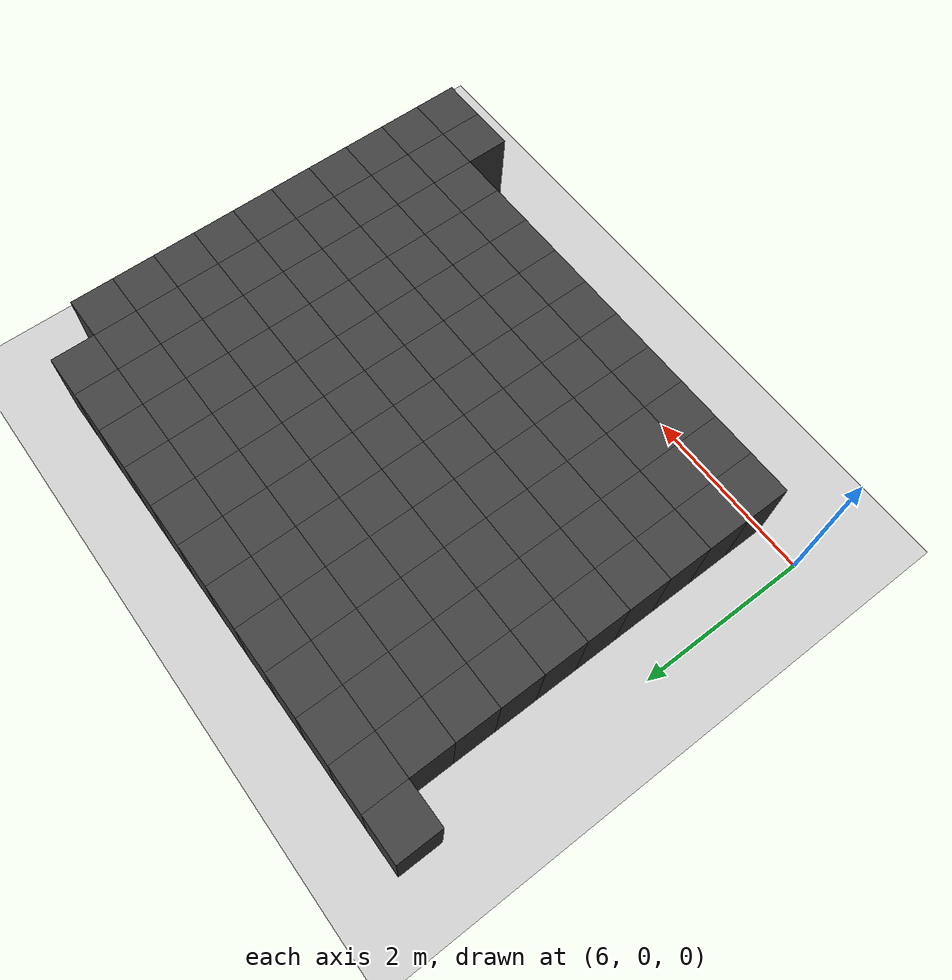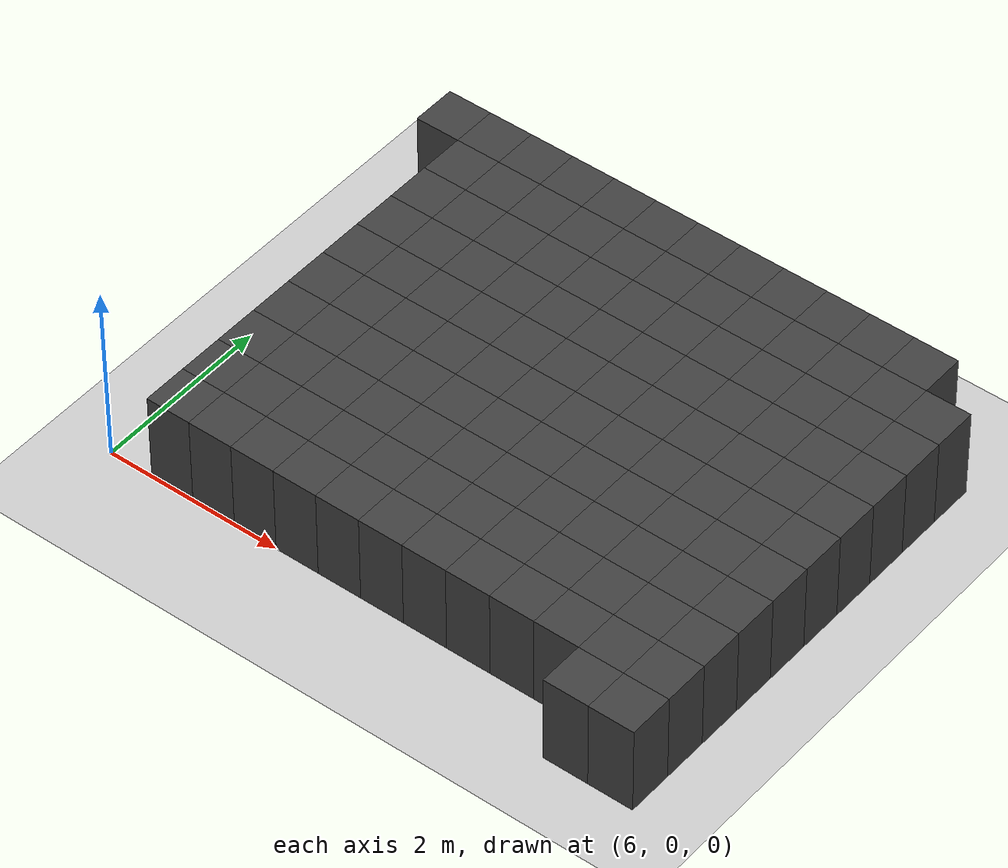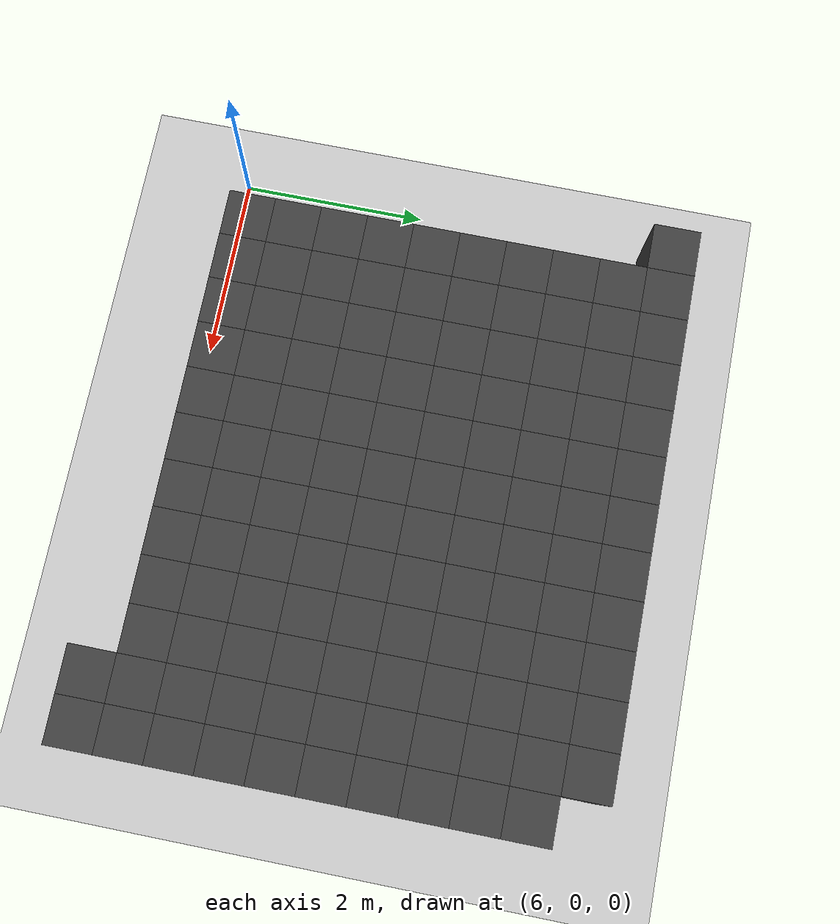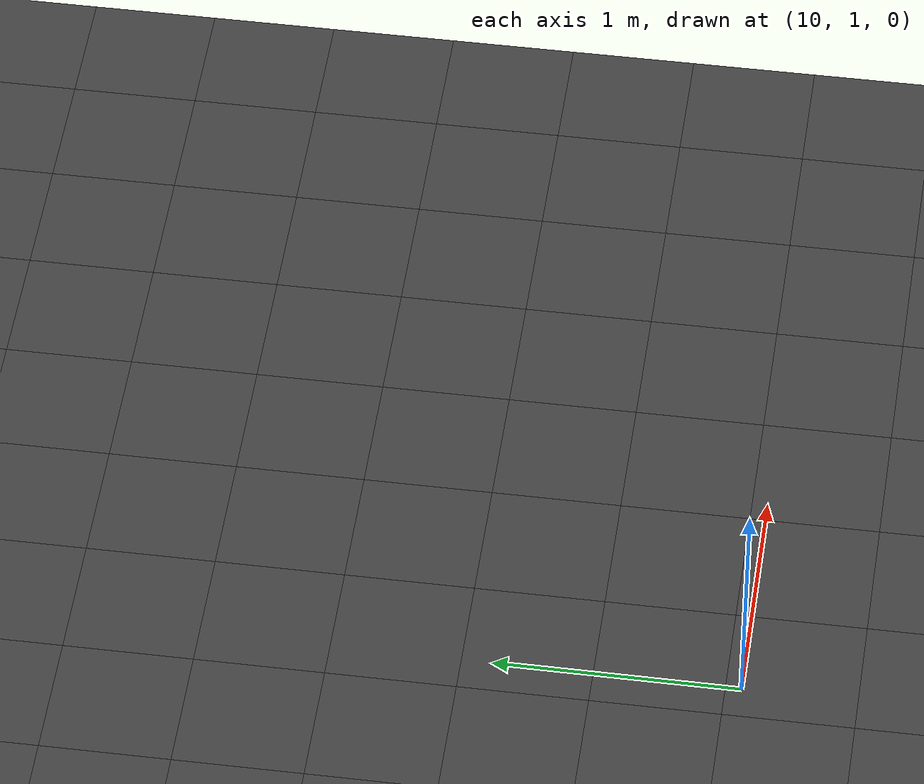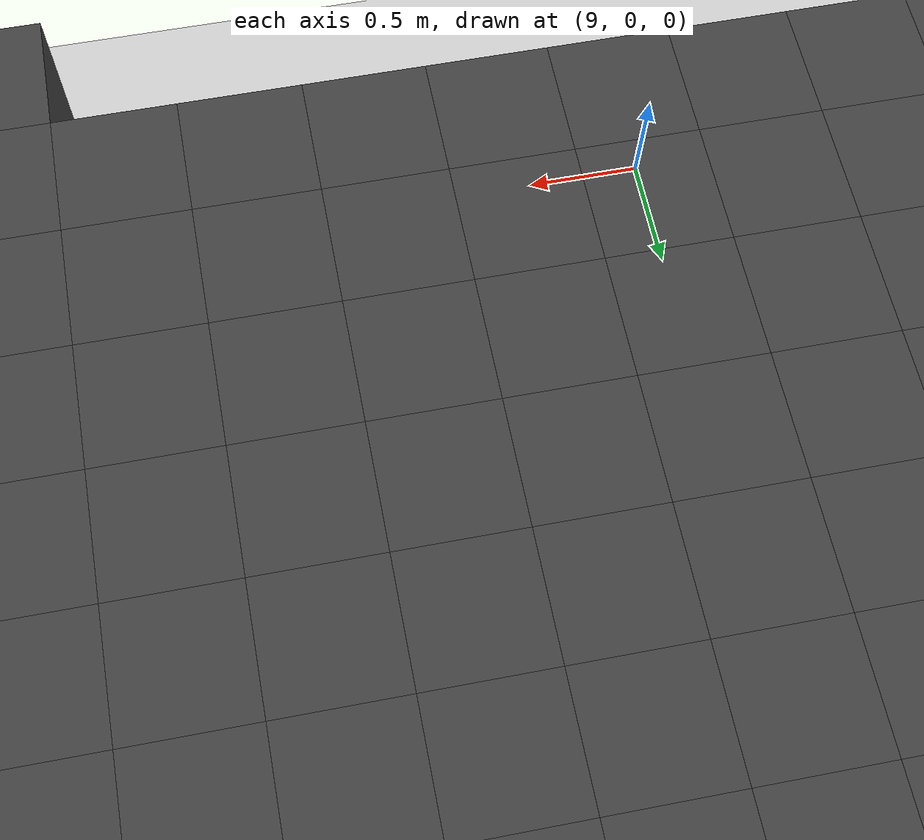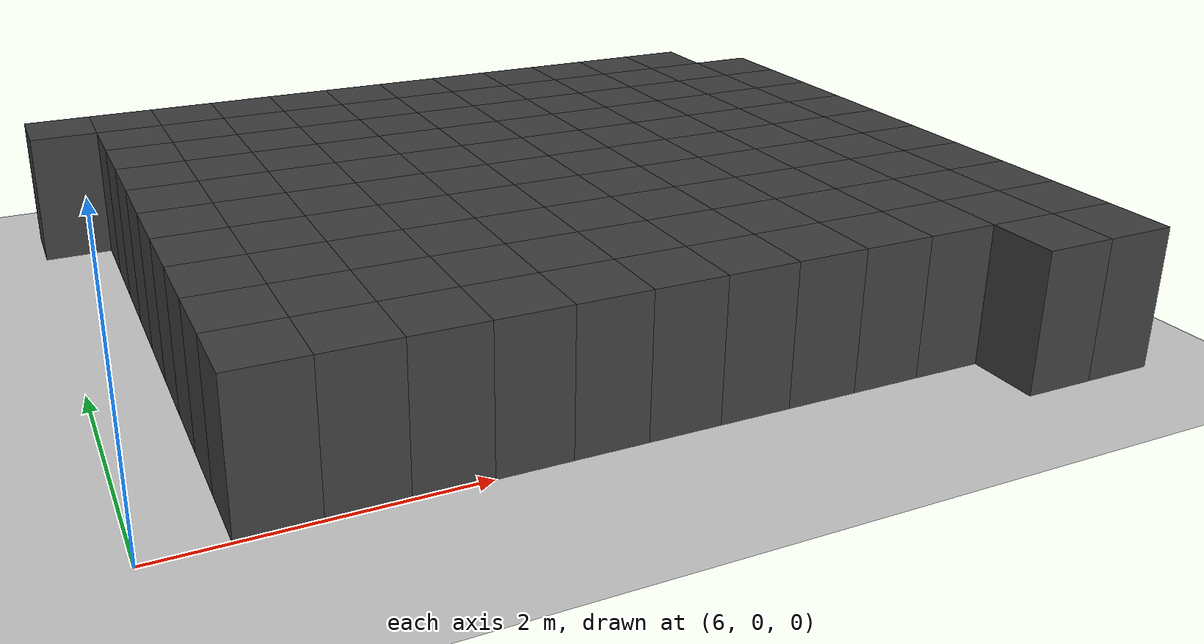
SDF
<sdf version="1.7">
 <world name="map_14547">
  <model name="ground_plane">
   <static>true</static>
   <link name="link">
    <collision name="collision">
     <geometry><plane><normal>0 0 1</normal><size>200 200</size></plane></geometry>
    </collision>
    <visual name="visual">
     <geometry><plane><normal>0 0 1</normal><size>200 200</size></plane></geometry>
     <material><ambient>0.8 0.8 0.8 1</ambient><diffuse>0.8 0.8 0.8 1</diffuse></material>
    </visual>
   </link>
  </model>
  <model name="maze_environment">
   <static>true</static>
   <link name="wall_475">
    <pose>6.250 4.750 0.500 0 0 0</pose>
    <collision name="col"><geometry><box><size>0.5 0.5 1.0</size></box></geometry></collision>
    <visual name="vis">
     <geometry><box><size>0.5 0.5 1.0</size></box></geometry>
     <material><ambient>0.15 0.15 0.15 1</ambient><diffuse>0.25 0.25 0.25 1</diffuse></material>
    </visual>
   </link>
   <link name="wall_476">
    <pose>6.750 4.750 0.500 0 0 0</pose>
    <collision name="col"><geometry><box><size>0.5 0.5 1.0</size></box></geometry></collision>
    <visual name="vis">
     <geometry><box><size>0.5 0.5 1.0</size></box></geometry>
     <material><ambient>0.15 0.15 0.15 1</ambient><diffuse>0.25 0.25 0.25 1</diffuse></material>
    </visual>
   </link>
   <link name="wall_477">
    <pose>7.250 4.750 0.500 0 0 0</pose>
    <collision name="col"><geometry><box><size>0.5 0.5 1.0</size></box></geometry></collision>
    <visual name="vis">
     <geometry><box><size>0.5 0.5 1.0</size></box></geometry>
     <material><ambient>0.15 0.15 0.15 1</ambient><diffuse>0.25 0.25 0.25 1</diffuse></material>
    </visual>
   </link>
   <link name="wall_478">
    <pose>7.750 4.750 0.500 0 0 0</pose>
    <collision name="col"><geometry><box><size>0.5 0.5 1.0</size></box></geometry></collision>
    <visual name="vis">
     <geometry><box><size>0.5 0.5 1.0</size></box></geometry>
     <material><ambient>0.15 0.15 0.15 1</ambient><diffuse>0.25 0.25 0.25 1</diffuse></material>
    </visual>
   </link>
   <link name="wall_479">
    <pose>8.250 4.750 0.500 0 0 0</pose>
    <collision name="col"><geometry><box><size>0.5 0.5 1.0</size></box></geometry></collision>
    <visual name="vis">
     <geometry><box><size>0.5 0.5 1.0</size></box></geometry>
     <material><ambient>0.15 0.15 0.15 1</ambient><diffuse>0.25 0.25 0.25 1</diffuse></material>
    </visual>
   </link>
   <link name="wall_480">
    <pose>8.750 4.750 0.500 0 0 0</pose>
    <collision name="col"><geometry><box><size>0.5 0.5 1.0</size></box></geometry></collision>
    <visual name="vis">
     <geometry><box><size>0.5 0.5 1.0</size></box></geometry>
     <material><ambient>0.15 0.15 0.15 1</ambient><diffuse>0.25 0.25 0.25 1</diffuse></material>
    </visual>
   </link>
   <link name="wall_481">
    <pose>9.250 4.750 0.500 0 0 0</pose>
    <collision name="col"><geometry><box><size>0.5 0.5 1.0</size></box></geometry></collision>
    <visual name="vis">
     <geometry><box><size>0.5 0.5 1.0</size></box></geometry>
     <material><ambient>0.15 0.15 0.15 1</ambient><diffuse>0.25 0.25 0.25 1</diffuse></material>
    </visual>
   </link>
   <link name="wall_482">
    <pose>9.750 4.750 0.500 0 0 0</pose>
    <collision name="col"><geometry><box><size>0.5 0.5 1.0</size></box></geometry></collision>
    <visual name="vis">
     <geometry><box><size>0.5 0.5 1.0</size></box></geometry>
     <material><ambient>0.15 0.15 0.15 1</ambient><diffuse>0.25 0.25 0.25 1</diffuse></material>
    </visual>
   </link>
   <link name="wall_483">
    <pose>10.250 4.750 0.500 0 0 0</pose>
    <collision name="col"><geometry><box><size>0.5 0.5 1.0</size></box></geometry></collision>
    <visual name="vis">
     <geometry><box><size>0.5 0.5 1.0</size></box></geometry>
     <material><ambient>0.15 0.15 0.15 1</ambient><diffuse>0.25 0.25 0.25 1</diffuse></material>
    </visual>
   </link>
   <link name="wall_484">
    <pose>10.750 4.750 0.500 0 0 0</pose>
    <collision name="col"><geometry><box><size>0.5 0.5 1.0</size></box></geometry></collision>
    <visual name="vis">
     <geometry><box><size>0.5 0.5 1.0</size></box></geometry>
     <material><ambient>0.15 0.15 0.15 1</ambient><diffuse>0.25 0.25 0.25 1</diffuse></material>
    </visual>
   </link>
   <link name="wall_485">
    <pose>11.250 4.750 0.500 0 0 0</pose>
    <collision name="col"><geometry><box><size>0.5 0.5 1.0</size></box></geometry></collision>
    <visual name="vis">
     <geometry><box><size>0.5 0.5 1.0</size></box></geometry>
     <material><ambient>0.15 0.15 0.15 1</ambient><diffuse>0.25 0.25 0.25 1</diffuse></material>
    </visual>
   </link>
   <link name="wall_486">
    <pose>11.750 4.750 0.500 0 0 0</pose>
    <collision name="col"><geometry><box><size>0.5 0.5 1.0</size></box></geometry></collision>
    <visual name="vis">
     <geometry><box><size>0.5 0.5 1.0</size></box></geometry>
     <material><ambient>0.15 0.15 0.15 1</ambient><diffuse>0.25 0.25 0.25 1</diffuse></material>
    </visual>
   </link>
   <link name="wall_518">
    <pose>6.750 4.250 0.500 0 0 0</pose>
    <collision name="col"><geometry><box><size>0.5 0.5 1.0</size></box></geometry></collision>
    <visual name="vis">
     <geometry><box><size>0.5 0.5 1.0</size></box></geometry>
     <material><ambient>0.15 0.15 0.15 1</ambient><diffuse>0.25 0.25 0.25 1</diffuse></material>
    </visual>
   </link>
   <link name="wall_519">
    <pose>7.250 4.250 0.500 0 0 0</pose>
    <collision name="col"><geometry><box><size>0.5 0.5 1.0</size></box></geometry></collision>
    <visual name="vis">
     <geometry><box><size>0.5 0.5 1.0</size></box></geometry>
     <material><ambient>0.15 0.15 0.15 1</ambient><diffuse>0.25 0.25 0.25 1</diffuse></material>
    </visual>
   </link>
   <link name="wall_520">
    <pose>7.750 4.250 0.500 0 0 0</pose>
    <collision name="col"><geometry><box><size>0.5 0.5 1.0</size></box></geometry></collision>
    <visual name="vis">
     <geometry><box><size>0.5 0.5 1.0</size></box></geometry>
     <material><ambient>0.15 0.15 0.15 1</ambient><diffuse>0.25 0.25 0.25 1</diffuse></material>
    </visual>
   </link>
   <link name="wall_521">
    <pose>8.250 4.250 0.500 0 0 0</pose>
    <collision name="col"><geometry><box><size>0.5 0.5 1.0</size></box></geometry></collision>
    <visual name="vis">
     <geometry><box><size>0.5 0.5 1.0</size></box></geometry>
     <material><ambient>0.15 0.15 0.15 1</ambient><diffuse>0.25 0.25 0.25 1</diffuse></material>
    </visual>
   </link>
   <link name="wall_522">
    <pose>8.750 4.250 0.500 0 0 0</pose>
    <collision name="col"><geometry><box><size>0.5 0.5 1.0</size></box></geometry></collision>
    <visual name="vis">
     <geometry><box><size>0.5 0.5 1.0</size></box></geometry>
     <material><ambient>0.15 0.15 0.15 1</ambient><diffuse>0.25 0.25 0.25 1</diffuse></material>
    </visual>
   </link>
   <link name="wall_523">
    <pose>9.250 4.250 0.500 0 0 0</pose>
    <collision name="col"><geometry><box><size>0.5 0.5 1.0</size></box></geometry></collision>
    <visual name="vis">
     <geometry><box><size>0.5 0.5 1.0</size></box></geometry>
     <material><ambient>0.15 0.15 0.15 1</ambient><diffuse>0.25 0.25 0.25 1</diffuse></material>
    </visual>
   </link>
   <link name="wall_524">
    <pose>9.750 4.250 0.500 0 0 0</pose>
    <collision name="col"><geometry><box><size>0.5 0.5 1.0</size></box></geometry></collision>
    <visual name="vis">
     <geometry><box><size>0.5 0.5 1.0</size></box></geometry>
     <material><ambient>0.15 0.15 0.15 1</ambient><diffuse>0.25 0.25 0.25 1</diffuse></material>
    </visual>
   </link>
   <link name="wall_525">
    <pose>10.250 4.250 0.500 0 0 0</pose>
    <collision name="col"><geometry><box><size>0.5 0.5 1.0</size></box></geometry></collision>
    <visual name="vis">
     <geometry><box><size>0.5 0.5 1.0</size></box></geometry>
     <material><ambient>0.15 0.15 0.15 1</ambient><diffuse>0.25 0.25 0.25 1</diffuse></material>
    </visual>
   </link>
   <link name="wall_526">
    <pose>10.750 4.250 0.500 0 0 0</pose>
    <collision name="col"><geometry><box><size>0.5 0.5 1.0</size></box></geometry></collision>
    <visual name="vis">
     <geometry><box><size>0.5 0.5 1.0</size></box></geometry>
     <material><ambient>0.15 0.15 0.15 1</ambient><diffuse>0.25 0.25 0.25 1</diffuse></material>
    </visual>
   </link>
   <link name="wall_527">
    <pose>11.250 4.250 0.500 0 0 0</pose>
    <collision name="col"><geometry><box><size>0.5 0.5 1.0</size></box></geometry></collision>
    <visual name="vis">
     <geometry><box><size>0.5 0.5 1.0</size></box></geometry>
     <material><ambient>0.15 0.15 0.15 1</ambient><diffuse>0.25 0.25 0.25 1</diffuse></material>
    </visual>
   </link>
   <link name="wall_528">
    <pose>11.750 4.250 0.500 0 0 0</pose>
    <collision name="col"><geometry><box><size>0.5 0.5 1.0</size></box></geometry></collision>
    <visual name="vis">
     <geometry><box><size>0.5 0.5 1.0</size></box></geometry>
     <material><ambient>0.15 0.15 0.15 1</ambient><diffuse>0.25 0.25 0.25 1</diffuse></material>
    </visual>
   </link>
   <link name="wall_529">
    <pose>12.250 4.250 0.500 0 0 0</pose>
    <collision name="col"><geometry><box><size>0.5 0.5 1.0</size></box></geometry></collision>
    <visual name="vis">
     <geometry><box><size>0.5 0.5 1.0</size></box></geometry>
     <material><ambient>0.15 0.15 0.15 1</ambient><diffuse>0.25 0.25 0.25 1</diffuse></material>
    </visual>
   </link>
   <link name="wall_560">
    <pose>6.750 3.750 0.500 0 0 0</pose>
    <collision name="col"><geometry><box><size>0.5 0.5 1.0</size></box></geometry></collision>
    <visual name="vis">
     <geometry><box><size>0.5 0.5 1.0</size></box></geometry>
     <material><ambient>0.15 0.15 0.15 1</ambient><diffuse>0.25 0.25 0.25 1</diffuse></material>
    </visual>
   </link>
   <link name="wall_561">
    <pose>7.250 3.750 0.500 0 0 0</pose>
    <collision name="col"><geometry><box><size>0.5 0.5 1.0</size></box></geometry></collision>
    <visual name="vis">
     <geometry><box><size>0.5 0.5 1.0</size></box></geometry>
     <material><ambient>0.15 0.15 0.15 1</ambient><diffuse>0.25 0.25 0.25 1</diffuse></material>
    </visual>
   </link>
   <link name="wall_562">
    <pose>7.750 3.750 0.500 0 0 0</pose>
    <collision name="col"><geometry><box><size>0.5 0.5 1.0</size></box></geometry></collision>
    <visual name="vis">
     <geometry><box><size>0.5 0.5 1.0</size></box></geometry>
     <material><ambient>0.15 0.15 0.15 1</ambient><diffuse>0.25 0.25 0.25 1</diffuse></material>
    </visual>
   </link>
   <link name="wall_563">
    <pose>8.250 3.750 0.500 0 0 0</pose>
    <collision name="col"><geometry><box><size>0.5 0.5 1.0</size></box></geometry></collision>
    <visual name="vis">
     <geometry><box><size>0.5 0.5 1.0</size></box></geometry>
     <material><ambient>0.15 0.15 0.15 1</ambient><diffuse>0.25 0.25 0.25 1</diffuse></material>
    </visual>
   </link>
   <link name="wall_564">
    <pose>8.750 3.750 0.500 0 0 0</pose>
    <collision name="col"><geometry><box><size>0.5 0.5 1.0</size></box></geometry></collision>
    <visual name="vis">
     <geometry><box><size>0.5 0.5 1.0</size></box></geometry>
     <material><ambient>0.15 0.15 0.15 1</ambient><diffuse>0.25 0.25 0.25 1</diffuse></material>
    </visual>
   </link>
   <link name="wall_565">
    <pose>9.250 3.750 0.500 0 0 0</pose>
    <collision name="col"><geometry><box><size>0.5 0.5 1.0</size></box></geometry></collision>
    <visual name="vis">
     <geometry><box><size>0.5 0.5 1.0</size></box></geometry>
     <material><ambient>0.15 0.15 0.15 1</ambient><diffuse>0.25 0.25 0.25 1</diffuse></material>
    </visual>
   </link>
   <link name="wall_566">
    <pose>9.750 3.750 0.500 0 0 0</pose>
    <collision name="col"><geometry><box><size>0.5 0.5 1.0</size></box></geometry></collision>
    <visual name="vis">
     <geometry><box><size>0.5 0.5 1.0</size></box></geometry>
     <material><ambient>0.15 0.15 0.15 1</ambient><diffuse>0.25 0.25 0.25 1</diffuse></material>
    </visual>
   </link>
   <link name="wall_567">
    <pose>10.250 3.750 0.500 0 0 0</pose>
    <collision name="col"><geometry><box><size>0.5 0.5 1.0</size></box></geometry></collision>
    <visual name="vis">
     <geometry><box><size>0.5 0.5 1.0</size></box></geometry>
     <material><ambient>0.15 0.15 0.15 1</ambient><diffuse>0.25 0.25 0.25 1</diffuse></material>
    </visual>
   </link>
   <link name="wall_568">
    <pose>10.750 3.750 0.500 0 0 0</pose>
    <collision name="col"><geometry><box><size>0.5 0.5 1.0</size></box></geometry></collision>
    <visual name="vis">
     <geometry><box><size>0.5 0.5 1.0</size></box></geometry>
     <material><ambient>0.15 0.15 0.15 1</ambient><diffuse>0.25 0.25 0.25 1</diffuse></material>
    </visual>
   </link>
   <link name="wall_569">
    <pose>11.250 3.750 0.500 0 0 0</pose>
    <collision name="col"><geometry><box><size>0.5 0.5 1.0</size></box></geometry></collision>
    <visual name="vis">
     <geometry><box><size>0.5 0.5 1.0</size></box></geometry>
     <material><ambient>0.15 0.15 0.15 1</ambient><diffuse>0.25 0.25 0.25 1</diffuse></material>
    </visual>
   </link>
   <link name="wall_570">
    <pose>11.750 3.750 0.500 0 0 0</pose>
    <collision name="col"><geometry><box><size>0.5 0.5 1.0</size></box></geometry></collision>
    <visual name="vis">
     <geometry><box><size>0.5 0.5 1.0</size></box></geometry>
     <material><ambient>0.15 0.15 0.15 1</ambient><diffuse>0.25 0.25 0.25 1</diffuse></material>
    </visual>
   </link>
   <link name="wall_571">
    <pose>12.250 3.750 0.500 0 0 0</pose>
    <collision name="col"><geometry><box><size>0.5 0.5 1.0</size></box></geometry></collision>
    <visual name="vis">
     <geometry><box><size>0.5 0.5 1.0</size></box></geometry>
     <material><ambient>0.15 0.15 0.15 1</ambient><diffuse>0.25 0.25 0.25 1</diffuse></material>
    </visual>
   </link>
   <link name="wall_609">
    <pose>6.750 3.250 0.500 0 0 0</pose>
    <collision name="col"><geometry><box><size>0.5 0.5 1.0</size></box></geometry></collision>
    <visual name="vis">
     <geometry><box><size>0.5 0.5 1.0</size></box></geometry>
     <material><ambient>0.15 0.15 0.15 1</ambient><diffuse>0.25 0.25 0.25 1</diffuse></material>
    </visual>
   </link>
   <link name="wall_610">
    <pose>7.250 3.250 0.500 0 0 0</pose>
    <collision name="col"><geometry><box><size>0.5 0.5 1.0</size></box></geometry></collision>
    <visual name="vis">
     <geometry><box><size>0.5 0.5 1.0</size></box></geometry>
     <material><ambient>0.15 0.15 0.15 1</ambient><diffuse>0.25 0.25 0.25 1</diffuse></material>
    </visual>
   </link>
   <link name="wall_611">
    <pose>7.750 3.250 0.500 0 0 0</pose>
    <collision name="col"><geometry><box><size>0.5 0.5 1.0</size></box></geometry></collision>
    <visual name="vis">
     <geometry><box><size>0.5 0.5 1.0</size></box></geometry>
     <material><ambient>0.15 0.15 0.15 1</ambient><diffuse>0.25 0.25 0.25 1</diffuse></material>
    </visual>
   </link>
   <link name="wall_612">
    <pose>8.250 3.250 0.500 0 0 0</pose>
    <collision name="col"><geometry><box><size>0.5 0.5 1.0</size></box></geometry></collision>
    <visual name="vis">
     <geometry><box><size>0.5 0.5 1.0</size></box></geometry>
     <material><ambient>0.15 0.15 0.15 1</ambient><diffuse>0.25 0.25 0.25 1</diffuse></material>
    </visual>
   </link>
   <link name="wall_613">
    <pose>8.750 3.250 0.500 0 0 0</pose>
    <collision name="col"><geometry><box><size>0.5 0.5 1.0</size></box></geometry></collision>
    <visual name="vis">
     <geometry><box><size>0.5 0.5 1.0</size></box></geometry>
     <material><ambient>0.15 0.15 0.15 1</ambient><diffuse>0.25 0.25 0.25 1</diffuse></material>
    </visual>
   </link>
   <link name="wall_614">
    <pose>9.250 3.250 0.500 0 0 0</pose>
    <collision name="col"><geometry><box><size>0.5 0.5 1.0</size></box></geometry></collision>
    <visual name="vis">
     <geometry><box><size>0.5 0.5 1.0</size></box></geometry>
     <material><ambient>0.15 0.15 0.15 1</ambient><diffuse>0.25 0.25 0.25 1</diffuse></material>
    </visual>
   </link>
   <link name="wall_615">
    <pose>9.750 3.250 0.500 0 0 0</pose>
    <collision name="col"><geometry><box><size>0.5 0.5 1.0</size></box></geometry></collision>
    <visual name="vis">
     <geometry><box><size>0.5 0.5 1.0</size></box></geometry>
     <material><ambient>0.15 0.15 0.15 1</ambient><diffuse>0.25 0.25 0.25 1</diffuse></material>
    </visual>
   </link>
   <link name="wall_616">
    <pose>10.250 3.250 0.500 0 0 0</pose>
    <collision name="col"><geometry><box><size>0.5 0.5 1.0</size></box></geometry></collision>
    <visual name="vis">
     <geometry><box><size>0.5 0.5 1.0</size></box></geometry>
     <material><ambient>0.15 0.15 0.15 1</ambient><diffuse>0.25 0.25 0.25 1</diffuse></material>
    </visual>
   </link>
   <link name="wall_617">
    <pose>10.750 3.250 0.500 0 0 0</pose>
    <collision name="col"><geometry><box><size>0.5 0.5 1.0</size></box></geometry></collision>
    <visual name="vis">
     <geometry><box><size>0.5 0.5 1.0</size></box></geometry>
     <material><ambient>0.15 0.15 0.15 1</ambient><diffuse>0.25 0.25 0.25 1</diffuse></material>
    </visual>
   </link>
   <link name="wall_618">
    <pose>11.250 3.250 0.500 0 0 0</pose>
    <collision name="col"><geometry><box><size>0.5 0.5 1.0</size></box></geometry></collision>
    <visual name="vis">
     <geometry><box><size>0.5 0.5 1.0</size></box></geometry>
     <material><ambient>0.15 0.15 0.15 1</ambient><diffuse>0.25 0.25 0.25 1</diffuse></material>
    </visual>
   </link>
   <link name="wall_619">
    <pose>11.750 3.250 0.500 0 0 0</pose>
    <collision name="col"><geometry><box><size>0.5 0.5 1.0</size></box></geometry></collision>
    <visual name="vis">
     <geometry><box><size>0.5 0.5 1.0</size></box></geometry>
     <material><ambient>0.15 0.15 0.15 1</ambient><diffuse>0.25 0.25 0.25 1</diffuse></material>
    </visual>
   </link>
   <link name="wall_620">
    <pose>12.250 3.250 0.500 0 0 0</pose>
    <collision name="col"><geometry><box><size>0.5 0.5 1.0</size></box></geometry></collision>
    <visual name="vis">
     <geometry><box><size>0.5 0.5 1.0</size></box></geometry>
     <material><ambient>0.15 0.15 0.15 1</ambient><diffuse>0.25 0.25 0.25 1</diffuse></material>
    </visual>
   </link>
   <link name="wall_653">
    <pose>6.750 2.750 0.500 0 0 0</pose>
    <collision name="col"><geometry><box><size>0.5 0.5 1.0</size></box></geometry></collision>
    <visual name="vis">
     <geometry><box><size>0.5 0.5 1.0</size></box></geometry>
     <material><ambient>0.15 0.15 0.15 1</ambient><diffuse>0.25 0.25 0.25 1</diffuse></material>
    </visual>
   </link>
   <link name="wall_654">
    <pose>7.250 2.750 0.500 0 0 0</pose>
    <collision name="col"><geometry><box><size>0.5 0.5 1.0</size></box></geometry></collision>
    <visual name="vis">
     <geometry><box><size>0.5 0.5 1.0</size></box></geometry>
     <material><ambient>0.15 0.15 0.15 1</ambient><diffuse>0.25 0.25 0.25 1</diffuse></material>
    </visual>
   </link>
   <link name="wall_655">
    <pose>7.750 2.750 0.500 0 0 0</pose>
    <collision name="col"><geometry><box><size>0.5 0.5 1.0</size></box></geometry></collision>
    <visual name="vis">
     <geometry><box><size>0.5 0.5 1.0</size></box></geometry>
     <material><ambient>0.15 0.15 0.15 1</ambient><diffuse>0.25 0.25 0.25 1</diffuse></material>
    </visual>
   </link>
   <link name="wall_656">
    <pose>8.250 2.750 0.500 0 0 0</pose>
    <collision name="col"><geometry><box><size>0.5 0.5 1.0</size></box></geometry></collision>
    <visual name="vis">
     <geometry><box><size>0.5 0.5 1.0</size></box></geometry>
     <material><ambient>0.15 0.15 0.15 1</ambient><diffuse>0.25 0.25 0.25 1</diffuse></material>
    </visual>
   </link>
   <link name="wall_657">
    <pose>8.750 2.750 0.500 0 0 0</pose>
    <collision name="col"><geometry><box><size>0.5 0.5 1.0</size></box></geometry></collision>
    <visual name="vis">
     <geometry><box><size>0.5 0.5 1.0</size></box></geometry>
     <material><ambient>0.15 0.15 0.15 1</ambient><diffuse>0.25 0.25 0.25 1</diffuse></material>
    </visual>
   </link>
   <link name="wall_658">
    <pose>9.250 2.750 0.500 0 0 0</pose>
    <collision name="col"><geometry><box><size>0.5 0.5 1.0</size></box></geometry></collision>
    <visual name="vis">
     <geometry><box><size>0.5 0.5 1.0</size></box></geometry>
     <material><ambient>0.15 0.15 0.15 1</ambient><diffuse>0.25 0.25 0.25 1</diffuse></material>
    </visual>
   </link>
   <link name="wall_659">
    <pose>9.750 2.750 0.500 0 0 0</pose>
    <collision name="col"><geometry><box><size>0.5 0.5 1.0</size></box></geometry></collision>
    <visual name="vis">
     <geometry><box><size>0.5 0.5 1.0</size></box></geometry>
     <material><ambient>0.15 0.15 0.15 1</ambient><diffuse>0.25 0.25 0.25 1</diffuse></material>
    </visual>
   </link>
   <link name="wall_660">
    <pose>10.250 2.750 0.500 0 0 0</pose>
    <collision name="col"><geometry><box><size>0.5 0.5 1.0</size></box></geometry></collision>
    <visual name="vis">
     <geometry><box><size>0.5 0.5 1.0</size></box></geometry>
     <material><ambient>0.15 0.15 0.15 1</ambient><diffuse>0.25 0.25 0.25 1</diffuse></material>
    </visual>
   </link>
   <link name="wall_661">
    <pose>10.750 2.750 0.500 0 0 0</pose>
    <collision name="col"><geometry><box><size>0.5 0.5 1.0</size></box></geometry></collision>
    <visual name="vis">
     <geometry><box><size>0.5 0.5 1.0</size></box></geometry>
     <material><ambient>0.15 0.15 0.15 1</ambient><diffuse>0.25 0.25 0.25 1</diffuse></material>
    </visual>
   </link>
   <link name="wall_662">
    <pose>11.250 2.750 0.500 0 0 0</pose>
    <collision name="col"><geometry><box><size>0.5 0.5 1.0</size></box></geometry></collision>
    <visual name="vis">
     <geometry><box><size>0.5 0.5 1.0</size></box></geometry>
     <material><ambient>0.15 0.15 0.15 1</ambient><diffuse>0.25 0.25 0.25 1</diffuse></material>
    </visual>
   </link>
   <link name="wall_663">
    <pose>11.750 2.750 0.500 0 0 0</pose>
    <collision name="col"><geometry><box><size>0.5 0.5 1.0</size></box></geometry></collision>
    <visual name="vis">
     <geometry><box><size>0.5 0.5 1.0</size></box></geometry>
     <material><ambient>0.15 0.15 0.15 1</ambient><diffuse>0.25 0.25 0.25 1</diffuse></material>
    </visual>
   </link>
   <link name="wall_664">
    <pose>12.250 2.750 0.500 0 0 0</pose>
    <collision name="col"><geometry><box><size>0.5 0.5 1.0</size></box></geometry></collision>
    <visual name="vis">
     <geometry><box><size>0.5 0.5 1.0</size></box></geometry>
     <material><ambient>0.15 0.15 0.15 1</ambient><diffuse>0.25 0.25 0.25 1</diffuse></material>
    </visual>
   </link>
   <link name="wall_697">
    <pose>6.750 2.250 0.500 0 0 0</pose>
    <collision name="col"><geometry><box><size>0.5 0.5 1.0</size></box></geometry></collision>
    <visual name="vis">
     <geometry><box><size>0.5 0.5 1.0</size></box></geometry>
     <material><ambient>0.15 0.15 0.15 1</ambient><diffuse>0.25 0.25 0.25 1</diffuse></material>
    </visual>
   </link>
   <link name="wall_698">
    <pose>7.250 2.250 0.500 0 0 0</pose>
    <collision name="col"><geometry><box><size>0.5 0.5 1.0</size></box></geometry></collision>
    <visual name="vis">
     <geometry><box><size>0.5 0.5 1.0</size></box></geometry>
     <material><ambient>0.15 0.15 0.15 1</ambient><diffuse>0.25 0.25 0.25 1</diffuse></material>
    </visual>
   </link>
   <link name="wall_699">
    <pose>7.750 2.250 0.500 0 0 0</pose>
    <collision name="col"><geometry><box><size>0.5 0.5 1.0</size></box></geometry></collision>
    <visual name="vis">
     <geometry><box><size>0.5 0.5 1.0</size></box></geometry>
     <material><ambient>0.15 0.15 0.15 1</ambient><diffuse>0.25 0.25 0.25 1</diffuse></material>
    </visual>
   </link>
   <link name="wall_700">
    <pose>8.250 2.250 0.500 0 0 0</pose>
    <collision name="col"><geometry><box><size>0.5 0.5 1.0</size></box></geometry></collision>
    <visual name="vis">
     <geometry><box><size>0.5 0.5 1.0</size></box></geometry>
     <material><ambient>0.15 0.15 0.15 1</ambient><diffuse>0.25 0.25 0.25 1</diffuse></material>
    </visual>
   </link>
   <link name="wall_701">
    <pose>8.750 2.250 0.500 0 0 0</pose>
    <collision name="col"><geometry><box><size>0.5 0.5 1.0</size></box></geometry></collision>
    <visual name="vis">
     <geometry><box><size>0.5 0.5 1.0</size></box></geometry>
     <material><ambient>0.15 0.15 0.15 1</ambient><diffuse>0.25 0.25 0.25 1</diffuse></material>
    </visual>
   </link>
   <link name="wall_702">
    <pose>9.250 2.250 0.500 0 0 0</pose>
    <collision name="col"><geometry><box><size>0.5 0.5 1.0</size></box></geometry></collision>
    <visual name="vis">
     <geometry><box><size>0.5 0.5 1.0</size></box></geometry>
     <material><ambient>0.15 0.15 0.15 1</ambient><diffuse>0.25 0.25 0.25 1</diffuse></material>
    </visual>
   </link>
   <link name="wall_703">
    <pose>9.750 2.250 0.500 0 0 0</pose>
    <collision name="col"><geometry><box><size>0.5 0.5 1.0</size></box></geometry></collision>
    <visual name="vis">
     <geometry><box><size>0.5 0.5 1.0</size></box></geometry>
     <material><ambient>0.15 0.15 0.15 1</ambient><diffuse>0.25 0.25 0.25 1</diffuse></material>
    </visual>
   </link>
   <link name="wall_704">
    <pose>10.250 2.250 0.500 0 0 0</pose>
    <collision name="col"><geometry><box><size>0.5 0.5 1.0</size></box></geometry></collision>
    <visual name="vis">
     <geometry><box><size>0.5 0.5 1.0</size></box></geometry>
     <material><ambient>0.15 0.15 0.15 1</ambient><diffuse>0.25 0.25 0.25 1</diffuse></material>
    </visual>
   </link>
   <link name="wall_705">
    <pose>10.750 2.250 0.500 0 0 0</pose>
    <collision name="col"><geometry><box><size>0.5 0.5 1.0</size></box></geometry></collision>
    <visual name="vis">
     <geometry><box><size>0.5 0.5 1.0</size></box></geometry>
     <material><ambient>0.15 0.15 0.15 1</ambient><diffuse>0.25 0.25 0.25 1</diffuse></material>
    </visual>
   </link>
   <link name="wall_706">
    <pose>11.250 2.250 0.500 0 0 0</pose>
    <collision name="col"><geometry><box><size>0.5 0.5 1.0</size></box></geometry></collision>
    <visual name="vis">
     <geometry><box><size>0.5 0.5 1.0</size></box></geometry>
     <material><ambient>0.15 0.15 0.15 1</ambient><diffuse>0.25 0.25 0.25 1</diffuse></material>
    </visual>
   </link>
   <link name="wall_707">
    <pose>11.750 2.250 0.500 0 0 0</pose>
    <collision name="col"><geometry><box><size>0.5 0.5 1.0</size></box></geometry></collision>
    <visual name="vis">
     <geometry><box><size>0.5 0.5 1.0</size></box></geometry>
     <material><ambient>0.15 0.15 0.15 1</ambient><diffuse>0.25 0.25 0.25 1</diffuse></material>
    </visual>
   </link>
   <link name="wall_708">
    <pose>12.250 2.250 0.500 0 0 0</pose>
    <collision name="col"><geometry><box><size>0.5 0.5 1.0</size></box></geometry></collision>
    <visual name="vis">
     <geometry><box><size>0.5 0.5 1.0</size></box></geometry>
     <material><ambient>0.15 0.15 0.15 1</ambient><diffuse>0.25 0.25 0.25 1</diffuse></material>
    </visual>
   </link>
   <link name="wall_741">
    <pose>6.750 1.750 0.500 0 0 0</pose>
    <collision name="col"><geometry><box><size>0.5 0.5 1.0</size></box></geometry></collision>
    <visual name="vis">
     <geometry><box><size>0.5 0.5 1.0</size></box></geometry>
     <material><ambient>0.15 0.15 0.15 1</ambient><diffuse>0.25 0.25 0.25 1</diffuse></material>
    </visual>
   </link>
   <link name="wall_742">
    <pose>7.250 1.750 0.500 0 0 0</pose>
    <collision name="col"><geometry><box><size>0.5 0.5 1.0</size></box></geometry></collision>
    <visual name="vis">
     <geometry><box><size>0.5 0.5 1.0</size></box></geometry>
     <material><ambient>0.15 0.15 0.15 1</ambient><diffuse>0.25 0.25 0.25 1</diffuse></material>
    </visual>
   </link>
   <link name="wall_743">
    <pose>7.750 1.750 0.500 0 0 0</pose>
    <collision name="col"><geometry><box><size>0.5 0.5 1.0</size></box></geometry></collision>
    <visual name="vis">
     <geometry><box><size>0.5 0.5 1.0</size></box></geometry>
     <material><ambient>0.15 0.15 0.15 1</ambient><diffuse>0.25 0.25 0.25 1</diffuse></material>
    </visual>
   </link>
   <link name="wall_744">
    <pose>8.250 1.750 0.500 0 0 0</pose>
    <collision name="col"><geometry><box><size>0.5 0.5 1.0</size></box></geometry></collision>
    <visual name="vis">
     <geometry><box><size>0.5 0.5 1.0</size></box></geometry>
     <material><ambient>0.15 0.15 0.15 1</ambient><diffuse>0.25 0.25 0.25 1</diffuse></material>
    </visual>
   </link>
   <link name="wall_745">
    <pose>8.750 1.750 0.500 0 0 0</pose>
    <collision name="col"><geometry><box><size>0.5 0.5 1.0</size></box></geometry></collision>
    <visual name="vis">
     <geometry><box><size>0.5 0.5 1.0</size></box></geometry>
     <material><ambient>0.15 0.15 0.15 1</ambient><diffuse>0.25 0.25 0.25 1</diffuse></material>
    </visual>
   </link>
   <link name="wall_746">
    <pose>9.250 1.750 0.500 0 0 0</pose>
    <collision name="col"><geometry><box><size>0.5 0.5 1.0</size></box></geometry></collision>
    <visual name="vis">
     <geometry><box><size>0.5 0.5 1.0</size></box></geometry>
     <material><ambient>0.15 0.15 0.15 1</ambient><diffuse>0.25 0.25 0.25 1</diffuse></material>
    </visual>
   </link>
   <link name="wall_747">
    <pose>9.750 1.750 0.500 0 0 0</pose>
    <collision name="col"><geometry><box><size>0.5 0.5 1.0</size></box></geometry></collision>
    <visual name="vis">
     <geometry><box><size>0.5 0.5 1.0</size></box></geometry>
     <material><ambient>0.15 0.15 0.15 1</ambient><diffuse>0.25 0.25 0.25 1</diffuse></material>
    </visual>
   </link>
   <link name="wall_748">
    <pose>10.250 1.750 0.500 0 0 0</pose>
    <collision name="col"><geometry><box><size>0.5 0.5 1.0</size></box></geometry></collision>
    <visual name="vis">
     <geometry><box><size>0.5 0.5 1.0</size></box></geometry>
     <material><ambient>0.15 0.15 0.15 1</ambient><diffuse>0.25 0.25 0.25 1</diffuse></material>
    </visual>
   </link>
   <link name="wall_749">
    <pose>10.750 1.750 0.500 0 0 0</pose>
    <collision name="col"><geometry><box><size>0.5 0.5 1.0</size></box></geometry></collision>
    <visual name="vis">
     <geometry><box><size>0.5 0.5 1.0</size></box></geometry>
     <material><ambient>0.15 0.15 0.15 1</ambient><diffuse>0.25 0.25 0.25 1</diffuse></material>
    </visual>
   </link>
   <link name="wall_750">
    <pose>11.250 1.750 0.500 0 0 0</pose>
    <collision name="col"><geometry><box><size>0.5 0.5 1.0</size></box></geometry></collision>
    <visual name="vis">
     <geometry><box><size>0.5 0.5 1.0</size></box></geometry>
     <material><ambient>0.15 0.15 0.15 1</ambient><diffuse>0.25 0.25 0.25 1</diffuse></material>
    </visual>
   </link>
   <link name="wall_751">
    <pose>11.750 1.750 0.500 0 0 0</pose>
    <collision name="col"><geometry><box><size>0.5 0.5 1.0</size></box></geometry></collision>
    <visual name="vis">
     <geometry><box><size>0.5 0.5 1.0</size></box></geometry>
     <material><ambient>0.15 0.15 0.15 1</ambient><diffuse>0.25 0.25 0.25 1</diffuse></material>
    </visual>
   </link>
   <link name="wall_752">
    <pose>12.250 1.750 0.500 0 0 0</pose>
    <collision name="col"><geometry><box><size>0.5 0.5 1.0</size></box></geometry></collision>
    <visual name="vis">
     <geometry><box><size>0.5 0.5 1.0</size></box></geometry>
     <material><ambient>0.15 0.15 0.15 1</ambient><diffuse>0.25 0.25 0.25 1</diffuse></material>
    </visual>
   </link>
   <link name="wall_786">
    <pose>6.750 1.250 0.500 0 0 0</pose>
    <collision name="col"><geometry><box><size>0.5 0.5 1.0</size></box></geometry></collision>
    <visual name="vis">
     <geometry><box><size>0.5 0.5 1.0</size></box></geometry>
     <material><ambient>0.15 0.15 0.15 1</ambient><diffuse>0.25 0.25 0.25 1</diffuse></material>
    </visual>
   </link>
   <link name="wall_787">
    <pose>7.250 1.250 0.500 0 0 0</pose>
    <collision name="col"><geometry><box><size>0.5 0.5 1.0</size></box></geometry></collision>
    <visual name="vis">
     <geometry><box><size>0.5 0.5 1.0</size></box></geometry>
     <material><ambient>0.15 0.15 0.15 1</ambient><diffuse>0.25 0.25 0.25 1</diffuse></material>
    </visual>
   </link>
   <link name="wall_788">
    <pose>7.750 1.250 0.500 0 0 0</pose>
    <collision name="col"><geometry><box><size>0.5 0.5 1.0</size></box></geometry></collision>
    <visual name="vis">
     <geometry><box><size>0.5 0.5 1.0</size></box></geometry>
     <material><ambient>0.15 0.15 0.15 1</ambient><diffuse>0.25 0.25 0.25 1</diffuse></material>
    </visual>
   </link>
   <link name="wall_789">
    <pose>8.250 1.250 0.500 0 0 0</pose>
    <collision name="col"><geometry><box><size>0.5 0.5 1.0</size></box></geometry></collision>
    <visual name="vis">
     <geometry><box><size>0.5 0.5 1.0</size></box></geometry>
     <material><ambient>0.15 0.15 0.15 1</ambient><diffuse>0.25 0.25 0.25 1</diffuse></material>
    </visual>
   </link>
   <link name="wall_790">
    <pose>8.750 1.250 0.500 0 0 0</pose>
    <collision name="col"><geometry><box><size>0.5 0.5 1.0</size></box></geometry></collision>
    <visual name="vis">
     <geometry><box><size>0.5 0.5 1.0</size></box></geometry>
     <material><ambient>0.15 0.15 0.15 1</ambient><diffuse>0.25 0.25 0.25 1</diffuse></material>
    </visual>
   </link>
   <link name="wall_791">
    <pose>9.250 1.250 0.500 0 0 0</pose>
    <collision name="col"><geometry><box><size>0.5 0.5 1.0</size></box></geometry></collision>
    <visual name="vis">
     <geometry><box><size>0.5 0.5 1.0</size></box></geometry>
     <material><ambient>0.15 0.15 0.15 1</ambient><diffuse>0.25 0.25 0.25 1</diffuse></material>
    </visual>
   </link>
   <link name="wall_792">
    <pose>9.750 1.250 0.500 0 0 0</pose>
    <collision name="col"><geometry><box><size>0.5 0.5 1.0</size></box></geometry></collision>
    <visual name="vis">
     <geometry><box><size>0.5 0.5 1.0</size></box></geometry>
     <material><ambient>0.15 0.15 0.15 1</ambient><diffuse>0.25 0.25 0.25 1</diffuse></material>
    </visual>
   </link>
   <link name="wall_793">
    <pose>10.250 1.250 0.500 0 0 0</pose>
    <collision name="col"><geometry><box><size>0.5 0.5 1.0</size></box></geometry></collision>
    <visual name="vis">
     <geometry><box><size>0.5 0.5 1.0</size></box></geometry>
     <material><ambient>0.15 0.15 0.15 1</ambient><diffuse>0.25 0.25 0.25 1</diffuse></material>
    </visual>
   </link>
   <link name="wall_794">
    <pose>10.750 1.250 0.500 0 0 0</pose>
    <collision name="col"><geometry><box><size>0.5 0.5 1.0</size></box></geometry></collision>
    <visual name="vis">
     <geometry><box><size>0.5 0.5 1.0</size></box></geometry>
     <material><ambient>0.15 0.15 0.15 1</ambient><diffuse>0.25 0.25 0.25 1</diffuse></material>
    </visual>
   </link>
   <link name="wall_795">
    <pose>11.250 1.250 0.500 0 0 0</pose>
    <collision name="col"><geometry><box><size>0.5 0.5 1.0</size></box></geometry></collision>
    <visual name="vis">
     <geometry><box><size>0.5 0.5 1.0</size></box></geometry>
     <material><ambient>0.15 0.15 0.15 1</ambient><diffuse>0.25 0.25 0.25 1</diffuse></material>
    </visual>
   </link>
   <link name="wall_796">
    <pose>11.750 1.250 0.500 0 0 0</pose>
    <collision name="col"><geometry><box><size>0.5 0.5 1.0</size></box></geometry></collision>
    <visual name="vis">
     <geometry><box><size>0.5 0.5 1.0</size></box></geometry>
     <material><ambient>0.15 0.15 0.15 1</ambient><diffuse>0.25 0.25 0.25 1</diffuse></material>
    </visual>
   </link>
   <link name="wall_797">
    <pose>12.250 1.250 0.500 0 0 0</pose>
    <collision name="col"><geometry><box><size>0.5 0.5 1.0</size></box></geometry></collision>
    <visual name="vis">
     <geometry><box><size>0.5 0.5 1.0</size></box></geometry>
     <material><ambient>0.15 0.15 0.15 1</ambient><diffuse>0.25 0.25 0.25 1</diffuse></material>
    </visual>
   </link>
   <link name="wall_831">
    <pose>6.750 0.750 0.500 0 0 0</pose>
    <collision name="col"><geometry><box><size>0.5 0.5 1.0</size></box></geometry></collision>
    <visual name="vis">
     <geometry><box><size>0.5 0.5 1.0</size></box></geometry>
     <material><ambient>0.15 0.15 0.15 1</ambient><diffuse>0.25 0.25 0.25 1</diffuse></material>
    </visual>
   </link>
   <link name="wall_832">
    <pose>7.250 0.750 0.500 0 0 0</pose>
    <collision name="col"><geometry><box><size>0.5 0.5 1.0</size></box></geometry></collision>
    <visual name="vis">
     <geometry><box><size>0.5 0.5 1.0</size></box></geometry>
     <material><ambient>0.15 0.15 0.15 1</ambient><diffuse>0.25 0.25 0.25 1</diffuse></material>
    </visual>
   </link>
   <link name="wall_833">
    <pose>7.750 0.750 0.500 0 0 0</pose>
    <collision name="col"><geometry><box><size>0.5 0.5 1.0</size></box></geometry></collision>
    <visual name="vis">
     <geometry><box><size>0.5 0.5 1.0</size></box></geometry>
     <material><ambient>0.15 0.15 0.15 1</ambient><diffuse>0.25 0.25 0.25 1</diffuse></material>
    </visual>
   </link>
   <link name="wall_834">
    <pose>8.250 0.750 0.500 0 0 0</pose>
    <collision name="col"><geometry><box><size>0.5 0.5 1.0</size></box></geometry></collision>
    <visual name="vis">
     <geometry><box><size>0.5 0.5 1.0</size></box></geometry>
     <material><ambient>0.15 0.15 0.15 1</ambient><diffuse>0.25 0.25 0.25 1</diffuse></material>
    </visual>
   </link>
   <link name="wall_835">
    <pose>8.750 0.750 0.500 0 0 0</pose>
    <collision name="col"><geometry><box><size>0.5 0.5 1.0</size></box></geometry></collision>
    <visual name="vis">
     <geometry><box><size>0.5 0.5 1.0</size></box></geometry>
     <material><ambient>0.15 0.15 0.15 1</ambient><diffuse>0.25 0.25 0.25 1</diffuse></material>
    </visual>
   </link>
   <link name="wall_836">
    <pose>9.250 0.750 0.500 0 0 0</pose>
    <collision name="col"><geometry><box><size>0.5 0.5 1.0</size></box></geometry></collision>
    <visual name="vis">
     <geometry><box><size>0.5 0.5 1.0</size></box></geometry>
     <material><ambient>0.15 0.15 0.15 1</ambient><diffuse>0.25 0.25 0.25 1</diffuse></material>
    </visual>
   </link>
   <link name="wall_837">
    <pose>9.750 0.750 0.500 0 0 0</pose>
    <collision name="col"><geometry><box><size>0.5 0.5 1.0</size></box></geometry></collision>
    <visual name="vis">
     <geometry><box><size>0.5 0.5 1.0</size></box></geometry>
     <material><ambient>0.15 0.15 0.15 1</ambient><diffuse>0.25 0.25 0.25 1</diffuse></material>
    </visual>
   </link>
   <link name="wall_838">
    <pose>10.250 0.750 0.500 0 0 0</pose>
    <collision name="col"><geometry><box><size>0.5 0.5 1.0</size></box></geometry></collision>
    <visual name="vis">
     <geometry><box><size>0.5 0.5 1.0</size></box></geometry>
     <material><ambient>0.15 0.15 0.15 1</ambient><diffuse>0.25 0.25 0.25 1</diffuse></material>
    </visual>
   </link>
   <link name="wall_839">
    <pose>10.750 0.750 0.500 0 0 0</pose>
    <collision name="col"><geometry><box><size>0.5 0.5 1.0</size></box></geometry></collision>
    <visual name="vis">
     <geometry><box><size>0.5 0.5 1.0</size></box></geometry>
     <material><ambient>0.15 0.15 0.15 1</ambient><diffuse>0.25 0.25 0.25 1</diffuse></material>
    </visual>
   </link>
   <link name="wall_840">
    <pose>11.250 0.750 0.500 0 0 0</pose>
    <collision name="col"><geometry><box><size>0.5 0.5 1.0</size></box></geometry></collision>
    <visual name="vis">
     <geometry><box><size>0.5 0.5 1.0</size></box></geometry>
     <material><ambient>0.15 0.15 0.15 1</ambient><diffuse>0.25 0.25 0.25 1</diffuse></material>
    </visual>
   </link>
   <link name="wall_841">
    <pose>11.750 0.750 0.500 0 0 0</pose>
    <collision name="col"><geometry><box><size>0.5 0.5 1.0</size></box></geometry></collision>
    <visual name="vis">
     <geometry><box><size>0.5 0.5 1.0</size></box></geometry>
     <material><ambient>0.15 0.15 0.15 1</ambient><diffuse>0.25 0.25 0.25 1</diffuse></material>
    </visual>
   </link>
   <link name="wall_842">
    <pose>12.250 0.750 0.500 0 0 0</pose>
    <collision name="col"><geometry><box><size>0.5 0.5 1.0</size></box></geometry></collision>
    <visual name="vis">
     <geometry><box><size>0.5 0.5 1.0</size></box></geometry>
     <material><ambient>0.15 0.15 0.15 1</ambient><diffuse>0.25 0.25 0.25 1</diffuse></material>
    </visual>
   </link>
   <link name="wall_872">
    <pose>6.750 0.250 0.500 0 0 0</pose>
    <collision name="col"><geometry><box><size>0.5 0.5 1.0</size></box></geometry></collision>
    <visual name="vis">
     <geometry><box><size>0.5 0.5 1.0</size></box></geometry>
     <material><ambient>0.15 0.15 0.15 1</ambient><diffuse>0.25 0.25 0.25 1</diffuse></material>
    </visual>
   </link>
   <link name="wall_873">
    <pose>7.250 0.250 0.500 0 0 0</pose>
    <collision name="col"><geometry><box><size>0.5 0.5 1.0</size></box></geometry></collision>
    <visual name="vis">
     <geometry><box><size>0.5 0.5 1.0</size></box></geometry>
     <material><ambient>0.15 0.15 0.15 1</ambient><diffuse>0.25 0.25 0.25 1</diffuse></material>
    </visual>
   </link>
   <link name="wall_874">
    <pose>7.750 0.250 0.500 0 0 0</pose>
    <collision name="col"><geometry><box><size>0.5 0.5 1.0</size></box></geometry></collision>
    <visual name="vis">
     <geometry><box><size>0.5 0.5 1.0</size></box></geometry>
     <material><ambient>0.15 0.15 0.15 1</ambient><diffuse>0.25 0.25 0.25 1</diffuse></material>
    </visual>
   </link>
   <link name="wall_875">
    <pose>8.250 0.250 0.500 0 0 0</pose>
    <collision name="col"><geometry><box><size>0.5 0.5 1.0</size></box></geometry></collision>
    <visual name="vis">
     <geometry><box><size>0.5 0.5 1.0</size></box></geometry>
     <material><ambient>0.15 0.15 0.15 1</ambient><diffuse>0.25 0.25 0.25 1</diffuse></material>
    </visual>
   </link>
   <link name="wall_876">
    <pose>8.750 0.250 0.500 0 0 0</pose>
    <collision name="col"><geometry><box><size>0.5 0.5 1.0</size></box></geometry></collision>
    <visual name="vis">
     <geometry><box><size>0.5 0.5 1.0</size></box></geometry>
     <material><ambient>0.15 0.15 0.15 1</ambient><diffuse>0.25 0.25 0.25 1</diffuse></material>
    </visual>
   </link>
   <link name="wall_877">
    <pose>9.250 0.250 0.500 0 0 0</pose>
    <collision name="col"><geometry><box><size>0.5 0.5 1.0</size></box></geometry></collision>
    <visual name="vis">
     <geometry><box><size>0.5 0.5 1.0</size></box></geometry>
     <material><ambient>0.15 0.15 0.15 1</ambient><diffuse>0.25 0.25 0.25 1</diffuse></material>
    </visual>
   </link>
   <link name="wall_878">
    <pose>9.750 0.250 0.500 0 0 0</pose>
    <collision name="col"><geometry><box><size>0.5 0.5 1.0</size></box></geometry></collision>
    <visual name="vis">
     <geometry><box><size>0.5 0.5 1.0</size></box></geometry>
     <material><ambient>0.15 0.15 0.15 1</ambient><diffuse>0.25 0.25 0.25 1</diffuse></material>
    </visual>
   </link>
   <link name="wall_879">
    <pose>10.250 0.250 0.500 0 0 0</pose>
    <collision name="col"><geometry><box><size>0.5 0.5 1.0</size></box></geometry></collision>
    <visual name="vis">
     <geometry><box><size>0.5 0.5 1.0</size></box></geometry>
     <material><ambient>0.15 0.15 0.15 1</ambient><diffuse>0.25 0.25 0.25 1</diffuse></material>
    </visual>
   </link>
   <link name="wall_880">
    <pose>10.750 0.250 0.500 0 0 0</pose>
    <collision name="col"><geometry><box><size>0.5 0.5 1.0</size></box></geometry></collision>
    <visual name="vis">
     <geometry><box><size>0.5 0.5 1.0</size></box></geometry>
     <material><ambient>0.15 0.15 0.15 1</ambient><diffuse>0.25 0.25 0.25 1</diffuse></material>
    </visual>
   </link>
   <link name="wall_881">
    <pose>11.250 0.250 0.500 0 0 0</pose>
    <collision name="col"><geometry><box><size>0.5 0.5 1.0</size></box></geometry></collision>
    <visual name="vis">
     <geometry><box><size>0.5 0.5 1.0</size></box></geometry>
     <material><ambient>0.15 0.15 0.15 1</ambient><diffuse>0.25 0.25 0.25 1</diffuse></material>
    </visual>
   </link>
   <link name="wall_882">
    <pose>11.750 0.250 0.500 0 0 0</pose>
    <collision name="col"><geometry><box><size>0.5 0.5 1.0</size></box></geometry></collision>
    <visual name="vis">
     <geometry><box><size>0.5 0.5 1.0</size></box></geometry>
     <material><ambient>0.15 0.15 0.15 1</ambient><diffuse>0.25 0.25 0.25 1</diffuse></material>
    </visual>
   </link>
   <link name="wall_883">
    <pose>12.250 0.250 0.500 0 0 0</pose>
    <collision name="col"><geometry><box><size>0.5 0.5 1.0</size></box></geometry></collision>
    <visual name="vis">
     <geometry><box><size>0.5 0.5 1.0</size></box></geometry>
     <material><ambient>0.15 0.15 0.15 1</ambient><diffuse>0.25 0.25 0.25 1</diffuse></material>
    </visual>
   </link>
   <link name="wall_923">
    <pose>11.750 -0.250 0.500 0 0 0</pose>
    <collision name="col"><geometry><box><size>0.5 0.5 1.0</size></box></geometry></collision>
    <visual name="vis">
     <geometry><box><size>0.5 0.5 1.0</size></box></geometry>
     <material><ambient>0.15 0.15 0.15 1</ambient><diffuse>0.25 0.25 0.25 1</diffuse></material>
    </visual>
   </link>
   <link name="wall_924">
    <pose>12.250 -0.250 0.500 0 0 0</pose>
    <collision name="col"><geometry><box><size>0.5 0.5 1.0</size></box></geometry></collision>
    <visual name="vis">
     <geometry><box><size>0.5 0.5 1.0</size></box></geometry>
     <material><ambient>0.15 0.15 0.15 1</ambient><diffuse>0.25 0.25 0.25 1</diffuse></material>
    </visual>
   </link>
  </model>
 </world>
</sdf>
